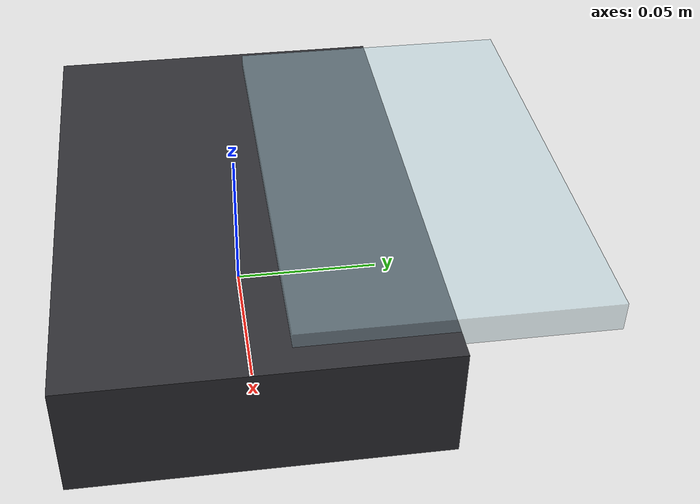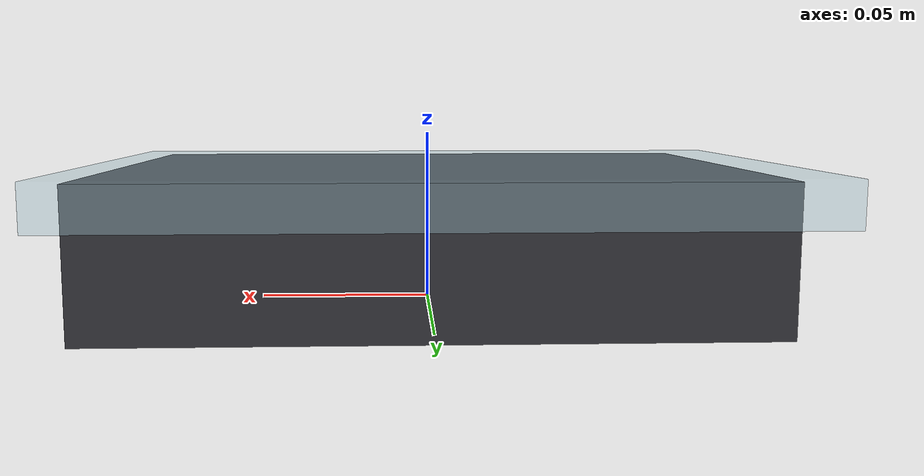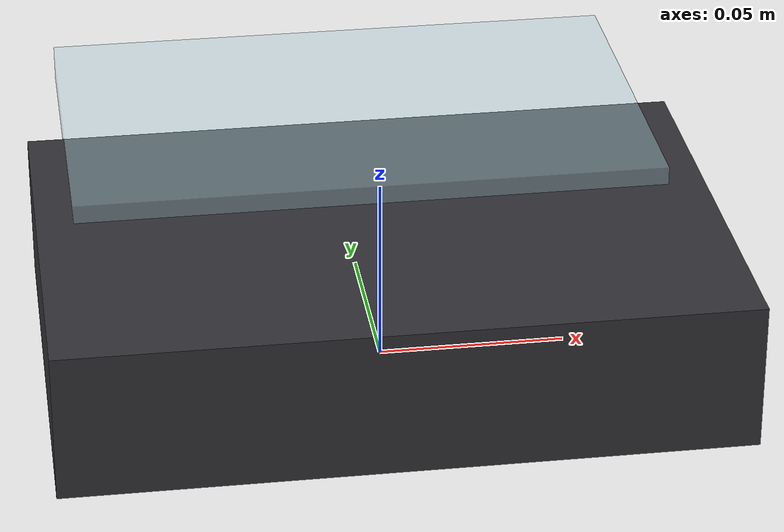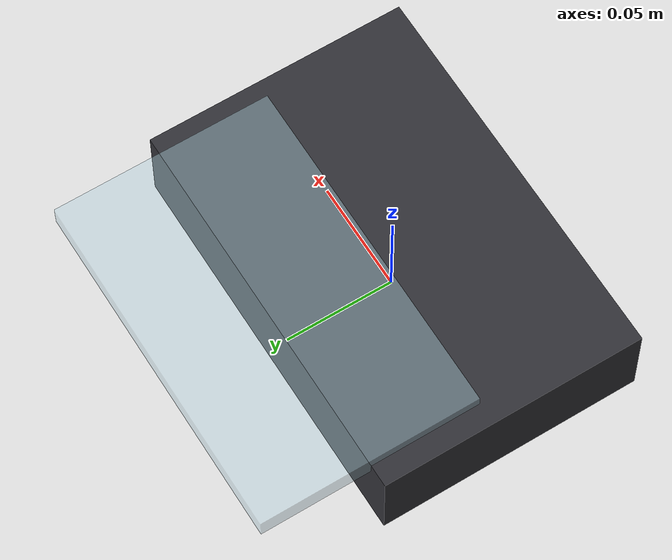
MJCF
<?xml version="1.0" encoding="utf-8"?>
<mujoco model="gel_electrophoresis_rig">
  <compiler angle="radian" autolimits="true"/>
  <default>
    <default class="body"><geom contype="1" conaffinity="1"/></default>
  </default>
  <worldbody>
    <body name="base">
      <geom type="box" size="0.09 0.06 0.02" pos="0 0 0.02" rgba="0.2 0.2 0.22 0.9" class="body"/>
      <body name="lid" pos="0 0.06 0.04">
        <joint name="lid_joint" type="hinge" axis="1 0 0" range="0 1.4" damping="0.2" frictionloss="0.3"/>
  <geom type="box" size="0.08 0.05 0.005" pos="0 0 0" rgba="0.7 0.85 0.9 0.4" class="body"/>
      </body>
    </body>
  </worldbody>
</mujoco>
